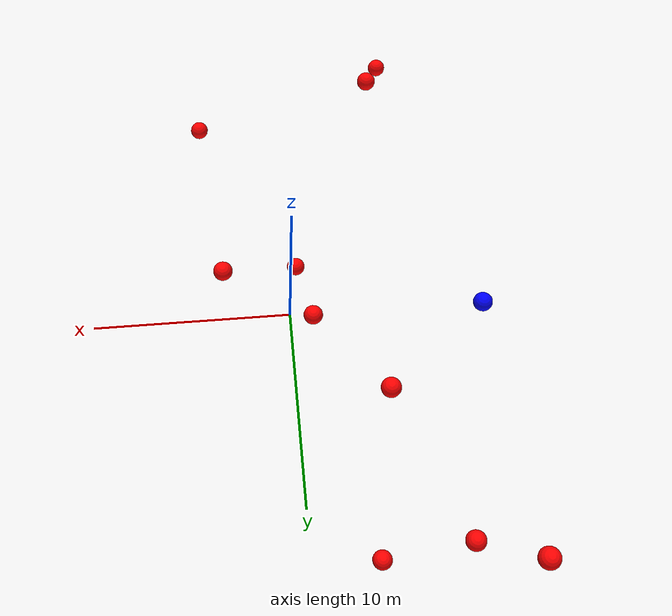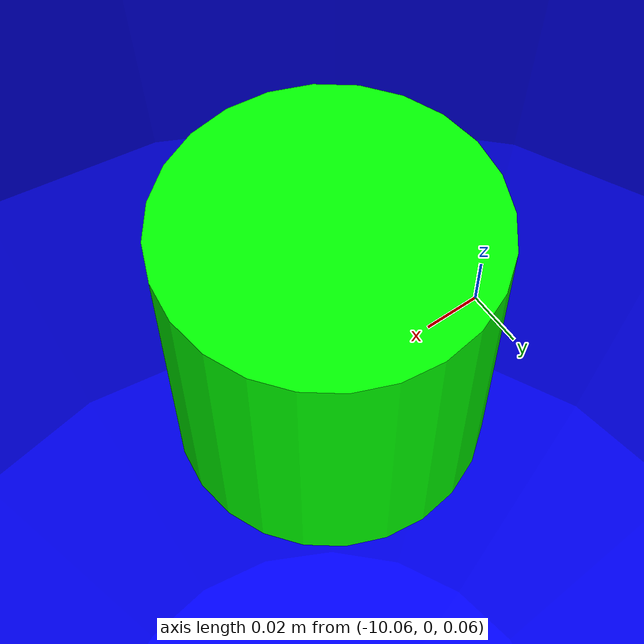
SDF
<?xml version="1.0" ?>
<sdf version="1.8">
    <world name="3d_world">
        <physics name="1ms" type="ode">
            <max_step_size>0.001</max_step_size>
            <real_time_factor>1.0</real_time_factor>
            <real_time_update_rate>1000.0</real_time_update_rate>
        </physics>
        <gravity>0 0 0</gravity>

        <plugin
            filename="gz-sim-physics-system"
            name="gz::sim::v8::systems::Physics">
        </plugin>
        <plugin
            filename="libignition-gazebo-user-commands-system.so"
            name="ignition::gazebo::systems::UserCommands">
        </plugin>
        <plugin
            filename="gz-sim-scene-broadcaster-system"
            name="gz::sim::systems::SceneBroadcaster">
        </plugin>
        <plugin
            filename="gz-sim-sensors-system"
            name="gz::sim::systems::Sensors">
            <render_engine>ogre2</render_engine>
        </plugin>

        <light type="directional" name="sun">
            <cast_shadows>true</cast_shadows>
            <pose>0 0 10 0 0 0</pose>
            <diffuse>0.8 0.8 0.8 1</diffuse>
            <specular>0.2 0.2 0.2 1</specular>
            <attenuation>
                <range>1000</range>
                <constant>0.9</constant>
                <linear>0.01</linear>
                <quadratic>0.001</quadratic>
            </attenuation>
            <direction>-0.5 0.1 -0.9</direction>
        </light>

        <!-- AGENTE -->
        <model name='agente' canonical_link='chassis'>
            <pose relative_to='world'>-10.0 0 0.0 0 0 0</pose>
            <link name='chassis'>
                <pose relative_to='__model__'>0.0 0 0.0 0 0 0</pose>
                <inertial>
                    <mass>1.14395</mass>
                    <inertia>
                        <ixx>0.095329</ixx>
                        <ixy>0</ixy>
                        <ixz>0</ixz>
                        <iyy>0.381317</iyy>
                        <iyz>0</iyz>
                        <izz>0.476646</izz>
                    </inertia>
                </inertial>
                <visual name='visual'>
                    <geometry>
                        <sphere>
                            <radius>0.5</radius>
                        </sphere>
                    </geometry>
                    <material>
                        <ambient>0.0 0.0 1.0 1</ambient>
                        <diffuse>0.0 0.0 1.0 1</diffuse>
                        <specular>0.0 0.0 1.0 1</specular>
                    </material>
                </visual>
                <collision name='collision'>
                    <geometry>
                        <sphere>
                            <radius>0.5</radius>
                        </sphere>
                    </geometry>
                </collision>
                <enable_gravity>false</enable_gravity>
            </link>

            <link name='lidar_link'>
                <pose relative_to='chassis'>0.0 0 0.1 0 0 0</pose>
                <inertial>
                    <mass>0.1</mass>
                    <inertia>
                        <ixx>0.000166667</ixx>
                        <iyy>0.000166667</iyy>
                        <izz>0.000166667</izz>
                    </inertia>
                </inertial>
                <collision name='collision'>
                    <geometry>
                        <cylinder>
                            <radius>0.05</radius>
                            <length>0.1</length>
                        </cylinder>
                    </geometry>
                </collision>
                <visual name='visual'>
                    <geometry>
                        <cylinder>
                            <radius>0.05</radius>
                            <length>0.1</length>
                        </cylinder>
                    </geometry>
                    <material>
                        <ambient>0.0 1.0 0.0 1</ambient>
                        <diffuse>0.0 1.0 0.0 1</diffuse>
                        <specular>0.0 1.0 0.0 1</specular>
                    </material>
                </visual>
                <sensor name="lidar" type="gpu_lidar">
                    <topic>scan</topic>
                    <update_rate>10</update_rate>
                    <lidar>
                        <scan>
                            <horizontal>
                                <samples>5000</samples>
                                <resolution>1</resolution>
                                <min_angle>-3.14159</min_angle>
                                <max_angle>3.14159</max_angle>
                            </horizontal>
                        </scan>
                        <range>
                            <min>0.1</min>
                            <max>10.0</max>
                            <resolution>0.01</resolution>
                        </range>
                    </lidar>
                    <visualize>true</visualize>
                    <always_on>true</always_on>
                    <update_rate>10</update_rate>
                    <pose_frame>lidar</pose_frame>
                </sensor>
                <enable_gravity>false</enable_gravity>
            </link>

            <joint name="lidar_joint" type="fixed">
                <parent>chassis</parent>
                <child>lidar_link</child>
            </joint>

            <plugin
                filename="ignition-gazebo-joint-state-publisher-system"
                name="ignition::gazebo::systems::JointStatePublisher">
            </plugin>
            <plugin
                filename="ignition-gazebo-odometry-publisher-system"
                name="ignition::gazebo::systems::OdometryPublisher">
                <dimensions>3</dimensions>
            </plugin>
            <plugin
                filename="ignition-gazebo-velocity-control-system"
                name="ignition::gazebo::systems::VelocityControl">
                <initial_linear>0.0 0 0</initial_linear>
                <initial_angular>0 0 0.0</initial_angular>
            </plugin>
            <plugin
                filename="libignition-gazebo-pose-publisher-system.so"
                name="ignition::gazebo::systems::PosePublisher">
                <topic>/agente/pose</topic>
                <frame_id>agente</frame_id>
                <update_rate>30</update_rate>
            </plugin>
        </model>

        <!-- OBSTACLE 1 -->
        <model name='obstacle_1' canonical_link='obstacle'>
            <static>false</static>
            <pose relative_to='world'>-3.61 12.00 -3.18 0 0 0</pose>
            <link name='obstacle'>
                <pose relative_to='__model__'>0.0 0 0.0 0 0 0</pose>
                <visual name='visual'>
                    <geometry>
                        <sphere>
                            <radius>0.50</radius>
                        </sphere>
                    </geometry>
                    <material>
                        <ambient>1.0 0.0 0.0 1</ambient>
                        <diffuse>1.0 0.0 0.0 1</diffuse>
                        <specular>1.0 0.0 0.0 1</specular>
                    </material>
                </visual>
                <collision name='collision'>
                    <geometry>
                        <sphere>
                            <radius>0.50</radius>
                        </sphere>
                    </geometry>
                </collision>
                <enable_gravity>false</enable_gravity>
            </link>

            <plugin
                filename="ignition-gazebo-velocity-control-system"
                name="ignition::gazebo::systems::VelocityControl">
                <initial_linear>1.20 -1.55 0.41</initial_linear>
                <initial_angular>0 0 0</initial_angular>
            </plugin>

            <plugin
                filename="ignition-gazebo-odometry-publisher-system"
                name="ignition::gazebo::systems::OdometryPublisher">
                <dimensions>3</dimensions>
            </plugin>
        </model>

        <!-- OBSTACLE 2 -->
        <model name='obstacle_2' canonical_link='obstacle'>
            <static>false</static>
            <pose relative_to='world'>-7.60 12.07 0.24 0 0 0</pose>
            <link name='obstacle'>
                <pose relative_to='__model__'>0.0 0 0.0 0 0 0</pose>
                <visual name='visual'>
                    <geometry>
                        <sphere>
                            <radius>0.50</radius>
                        </sphere>
                    </geometry>
                    <material>
                        <ambient>1.0 0.0 0.0 1</ambient>
                        <diffuse>1.0 0.0 0.0 1</diffuse>
                        <specular>1.0 0.0 0.0 1</specular>
                    </material>
                </visual>
                <collision name='collision'>
                    <geometry>
                        <sphere>
                            <radius>0.50</radius>
                        </sphere>
                    </geometry>
                </collision>
                <enable_gravity>false</enable_gravity>
            </link>

            <plugin
                filename="ignition-gazebo-velocity-control-system"
                name="ignition::gazebo::systems::VelocityControl">
                <initial_linear>0.90 -1.79 -0.04</initial_linear>
                <initial_angular>0 0 0</initial_angular>
            </plugin>

            <plugin
                filename="ignition-gazebo-odometry-publisher-system"
                name="ignition::gazebo::systems::OdometryPublisher">
                <dimensions>3</dimensions>
            </plugin>
        </model>

        <!-- OBSTACLE 3 -->
        <model name='obstacle_3' canonical_link='obstacle'>
            <static>false</static>
            <pose relative_to='world'>-4.42 4.98 1.89 0 0 0</pose>
            <link name='obstacle'>
                <pose relative_to='__model__'>0.0 0 0.0 0 0 0</pose>
                <visual name='visual'>
                    <geometry>
                        <sphere>
                            <radius>0.50</radius>
                        </sphere>
                    </geometry>
                    <material>
                        <ambient>1.0 0.0 0.0 1</ambient>
                        <diffuse>1.0 0.0 0.0 1</diffuse>
                        <specular>1.0 0.0 0.0 1</specular>
                    </material>
                </visual>
                <collision name='collision'>
                    <geometry>
                        <sphere>
                            <radius>0.50</radius>
                        </sphere>
                    </geometry>
                </collision>
                <enable_gravity>false</enable_gravity>
            </link>

            <plugin
                filename="ignition-gazebo-velocity-control-system"
                name="ignition::gazebo::systems::VelocityControl">
                <initial_linear>-0.01 -1.87 -0.71</initial_linear>
                <initial_angular>0 0 0</initial_angular>
            </plugin>

            <plugin
                filename="ignition-gazebo-odometry-publisher-system"
                name="ignition::gazebo::systems::OdometryPublisher">
                <dimensions>3</dimensions>
            </plugin>
        </model>

        <!-- OBSTACLE 4 -->
        <model name='obstacle_4' canonical_link='obstacle'>
            <static>false</static>
            <pose relative_to='world'>-5.43 -13.78 0.97 0 0 0</pose>
            <link name='obstacle'>
                <pose relative_to='__model__'>0.0 0 0.0 0 0 0</pose>
                <visual name='visual'>
                    <geometry>
                        <sphere>
                            <radius>0.50</radius>
                        </sphere>
                    </geometry>
                    <material>
                        <ambient>1.0 0.0 0.0 1</ambient>
                        <diffuse>1.0 0.0 0.0 1</diffuse>
                        <specular>1.0 0.0 0.0 1</specular>
                    </material>
                </visual>
                <collision name='collision'>
                    <geometry>
                        <sphere>
                            <radius>0.50</radius>
                        </sphere>
                    </geometry>
                </collision>
                <enable_gravity>false</enable_gravity>
            </link>

            <plugin
                filename="ignition-gazebo-velocity-control-system"
                name="ignition::gazebo::systems::VelocityControl">
                <initial_linear>0.47 1.94 -0.14</initial_linear>
                <initial_angular>0 0 0</initial_angular>
            </plugin>

            <plugin
                filename="ignition-gazebo-odometry-publisher-system"
                name="ignition::gazebo::systems::OdometryPublisher">
                <dimensions>3</dimensions>
            </plugin>
        </model>

        <!-- OBSTACLE 5 -->
        <model name='obstacle_5' canonical_link='obstacle'>
            <static>false</static>
            <pose relative_to='world'>3.28 -2.52 0.51 0 0 0</pose>
            <link name='obstacle'>
                <pose relative_to='__model__'>0.0 0 0.0 0 0 0</pose>
                <visual name='visual'>
                    <geometry>
                        <sphere>
                            <radius>0.50</radius>
                        </sphere>
                    </geometry>
                    <material>
                        <ambient>1.0 0.0 0.0 1</ambient>
                        <diffuse>1.0 0.0 0.0 1</diffuse>
                        <specular>1.0 0.0 0.0 1</specular>
                    </material>
                </visual>
                <collision name='collision'>
                    <geometry>
                        <sphere>
                            <radius>0.50</radius>
                        </sphere>
                    </geometry>
                </collision>
                <enable_gravity>false</enable_gravity>
            </link>

            <plugin
                filename="ignition-gazebo-velocity-control-system"
                name="ignition::gazebo::systems::VelocityControl">
                <initial_linear>-1.83 0.80 -0.16</initial_linear>
                <initial_angular>0 0 0</initial_angular>
            </plugin>

            <plugin
                filename="ignition-gazebo-odometry-publisher-system"
                name="ignition::gazebo::systems::OdometryPublisher">
                <dimensions>3</dimensions>
            </plugin>
        </model>

        <!-- OBSTACLE 6 -->
        <model name='obstacle_6' canonical_link='obstacle'>
            <static>false</static>
            <pose relative_to='world'>-6.81 -17.73 -2.83 0 0 0</pose>
            <link name='obstacle'>
                <pose relative_to='__model__'>0.0 0 0.0 0 0 0</pose>
                <visual name='visual'>
                    <geometry>
                        <sphere>
                            <radius>0.50</radius>
                        </sphere>
                    </geometry>
                    <material>
                        <ambient>1.0 0.0 0.0 1</ambient>
                        <diffuse>1.0 0.0 0.0 1</diffuse>
                        <specular>1.0 0.0 0.0 1</specular>
                    </material>
                </visual>
                <collision name='collision'>
                    <geometry>
                        <sphere>
                            <radius>0.50</radius>
                        </sphere>
                    </geometry>
                </collision>
                <enable_gravity>false</enable_gravity>
            </link>

            <plugin
                filename="ignition-gazebo-velocity-control-system"
                name="ignition::gazebo::systems::VelocityControl">
                <initial_linear>1.19 1.59 0.25</initial_linear>
                <initial_angular>0 0 0</initial_angular>
            </plugin>

            <plugin
                filename="ignition-gazebo-odometry-publisher-system"
                name="ignition::gazebo::systems::OdometryPublisher">
                <dimensions>3</dimensions>
            </plugin>
        </model>

        <!-- OBSTACLE 7 -->
        <model name='obstacle_7' canonical_link='obstacle'>
            <static>false</static>
            <pose relative_to='world'>-9.63 13.79 4.37 0 0 0</pose>
            <link name='obstacle'>
                <pose relative_to='__model__'>0.0 0 0.0 0 0 0</pose>
                <visual name='visual'>
                    <geometry>
                        <sphere>
                            <radius>0.50</radius>
                        </sphere>
                    </geometry>
                    <material>
                        <ambient>1.0 0.0 0.0 1</ambient>
                        <diffuse>1.0 0.0 0.0 1</diffuse>
                        <specular>1.0 0.0 0.0 1</specular>
                    </material>
                </visual>
                <collision name='collision'>
                    <geometry>
                        <sphere>
                            <radius>0.50</radius>
                        </sphere>
                    </geometry>
                </collision>
                <enable_gravity>false</enable_gravity>
            </link>

            <plugin
                filename="ignition-gazebo-velocity-control-system"
                name="ignition::gazebo::systems::VelocityControl">
                <initial_linear>1.10 -1.59 -0.50</initial_linear>
                <initial_angular>0 0 0</initial_angular>
            </plugin>

            <plugin
                filename="ignition-gazebo-odometry-publisher-system"
                name="ignition::gazebo::systems::OdometryPublisher">
                <dimensions>3</dimensions>
            </plugin>
        </model>

        <!-- OBSTACLE 8 -->
        <model name='obstacle_8' canonical_link='obstacle'>
            <static>false</static>
            <pose relative_to='world'>4.35 -14.17 -3.29 0 0 0</pose>
            <link name='obstacle'>
                <pose relative_to='__model__'>0.0 0 0.0 0 0 0</pose>
                <visual name='visual'>
                    <geometry>
                        <sphere>
                            <radius>0.50</radius>
                        </sphere>
                    </geometry>
                    <material>
                        <ambient>1.0 0.0 0.0 1</ambient>
                        <diffuse>1.0 0.0 0.0 1</diffuse>
                        <specular>1.0 0.0 0.0 1</specular>
                    </material>
                </visual>
                <collision name='collision'>
                    <geometry>
                        <sphere>
                            <radius>0.50</radius>
                        </sphere>
                    </geometry>
                </collision>
                <enable_gravity>false</enable_gravity>
            </link>

            <plugin
                filename="ignition-gazebo-velocity-control-system"
                name="ignition::gazebo::systems::VelocityControl">
                <initial_linear>-0.88 1.75 0.41</initial_linear>
                <initial_angular>0 0 0</initial_angular>
            </plugin>

            <plugin
                filename="ignition-gazebo-odometry-publisher-system"
                name="ignition::gazebo::systems::OdometryPublisher">
                <dimensions>3</dimensions>
            </plugin>
        </model>

        <!-- OBSTACLE 9 -->
        <model name='obstacle_9' canonical_link='obstacle'>
            <static>false</static>
            <pose relative_to='world'>-0.75 -4.82 -3.98 0 0 0</pose>
            <link name='obstacle'>
                <pose relative_to='__model__'>0.0 0 0.0 0 0 0</pose>
                <visual name='visual'>
                    <geometry>
                        <sphere>
                            <radius>0.50</radius>
                        </sphere>
                    </geometry>
                    <material>
                        <ambient>1.0 0.0 0.0 1</ambient>
                        <diffuse>1.0 0.0 0.0 1</diffuse>
                        <specular>1.0 0.0 0.0 1</specular>
                    </material>
                </visual>
                <collision name='collision'>
                    <geometry>
                        <sphere>
                            <radius>0.50</radius>
                        </sphere>
                    </geometry>
                </collision>
                <enable_gravity>false</enable_gravity>
            </link>

            <plugin
                filename="ignition-gazebo-velocity-control-system"
                name="ignition::gazebo::systems::VelocityControl">
                <initial_linear>-0.59 1.47 1.22</initial_linear>
                <initial_angular>0 0 0</initial_angular>
            </plugin>

            <plugin
                filename="ignition-gazebo-odometry-publisher-system"
                name="ignition::gazebo::systems::OdometryPublisher">
                <dimensions>3</dimensions>
            </plugin>
        </model>

        <!-- OBSTACLE 10 -->
        <model name='obstacle_10' canonical_link='obstacle'>
            <static>false</static>
            <pose relative_to='world'>-1.22 -0.05 -0.28 0 0 0</pose>
            <link name='obstacle'>
                <pose relative_to='__model__'>0.0 0 0.0 0 0 0</pose>
                <visual name='visual'>
                    <geometry>
                        <sphere>
                            <radius>0.50</radius>
                        </sphere>
                    </geometry>
                    <material>
                        <ambient>1.0 0.0 0.0 1</ambient>
                        <diffuse>1.0 0.0 0.0 1</diffuse>
                        <specular>1.0 0.0 0.0 1</specular>
                    </material>
                </visual>
                <collision name='collision'>
                    <geometry>
                        <sphere>
                            <radius>0.50</radius>
                        </sphere>
                    </geometry>
                </collision>
                <enable_gravity>false</enable_gravity>
            </link>

            <plugin
                filename="ignition-gazebo-velocity-control-system"
                name="ignition::gazebo::systems::VelocityControl">
                <initial_linear>-0.48 0.02 0.09</initial_linear>
                <initial_angular>0 0 0</initial_angular>
            </plugin>

            <plugin
                filename="ignition-gazebo-odometry-publisher-system"
                name="ignition::gazebo::systems::OdometryPublisher">
                <dimensions>3</dimensions>
            </plugin>
        </model>

    </world>
</sdf>
